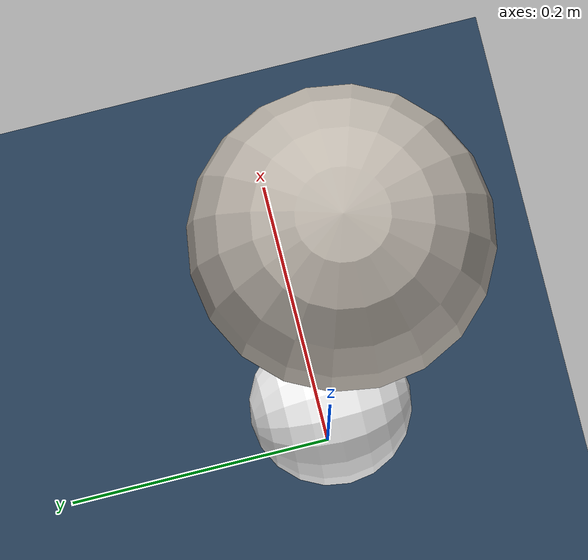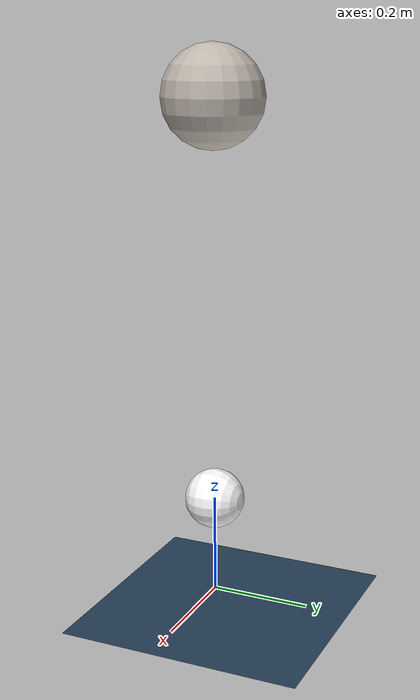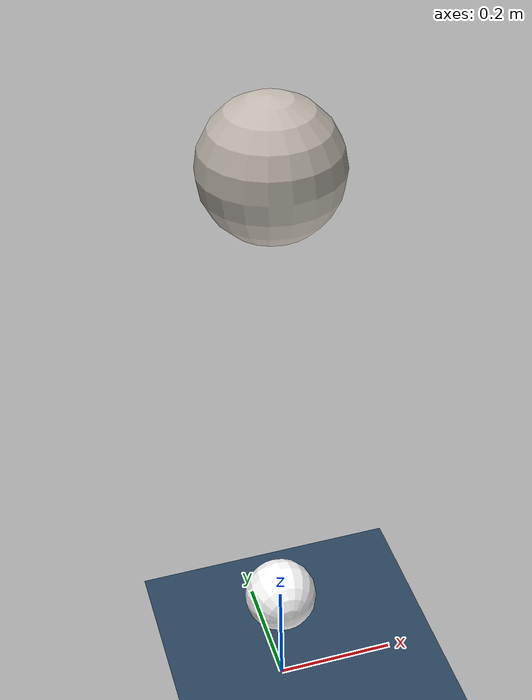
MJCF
<mujoco>
    <option gravity="0 0 -9.80"/>
	<asset>
		<texture type="skybox" builtin="gradient" rgb1=".3 .5 .7" rgb2="0 0 0" width="32" height="512"/>
        <texture name="grid" type="2d" builtin="checker" width="512" height="512" rgb1=".1 .2 .3" rgb2=".2 .3 .4"/>
        <texture name = 'highlight' type = '2d' builtin='gradient' rgb1 = '255 255 255' rgb2 = '255 255 255' width = '512' height = '512'/>
        <material name = 'ball' texture = 'highlight' texrepeat ='1 1' texuniform = 'true'/>
        <material name="grid" texture="grid" texrepeat="1 1" texuniform="true" reflectance=".0"/>

		<texture name="bb8_tex" type="2d" file="bb8_textures/bb8one.png"/>
		<material name="bb8_mat" texture="bb8_tex" texrepeat="1 1" texuniform="false"/>

		<texture name="bb8_head_tex" type="2d" file="bb8_textures/bb8head.png"/>
		<material name="bb8_head_mat" texture="bb8_head_tex" texrepeat=".8 1.2" texuniform="false"/>
	</asset>
	<worldbody>
		<geom name="floor" size="0 0 .05" type="plane" material="grid"/>
        <light name="spotlight" mode="targetbodycom" target="bb8" diffuse=".8 .8 .8" specular="0.3 0.3 0.3" pos="0 -6 4" cutoff="30"/>
        <light name="top" pos="0 0 2" mode="trackcom"/>

		<body name = 'bb8' pos="0 0 1">
			<joint name = 'bb8_free' type="free" />
			<geom name = "bb8" type = "sphere" size = ".1" material="bb8_mat"/>
		</body>

		<body pos= "0 0 .1" mocap = 'true'>
			<geom name="head" pos="0 0 0.1" size=".06" type="sphere" rgba="1 1 1 1" contype="0" conaffinity="0" material="bb8_head_mat" euler="90 0 0"/>
		</body>

	</worldbody>
</mujoco>
